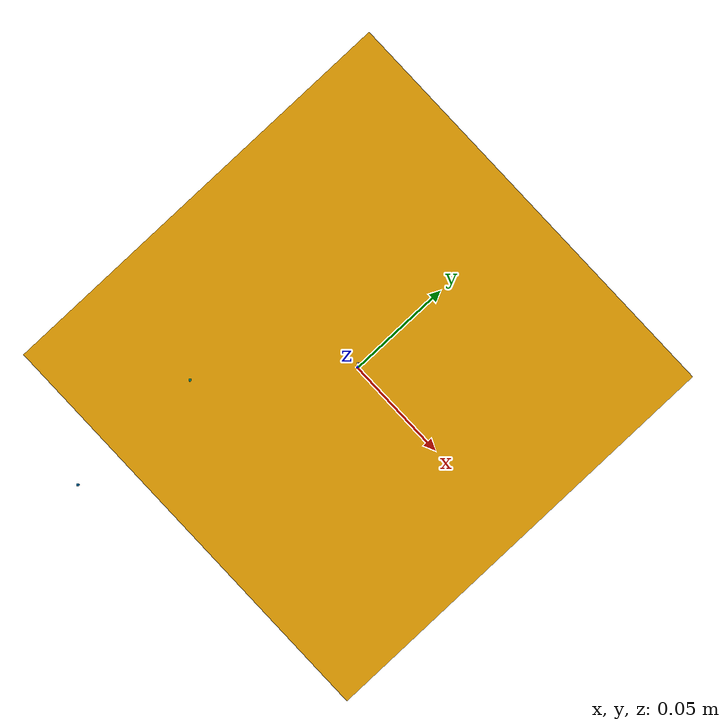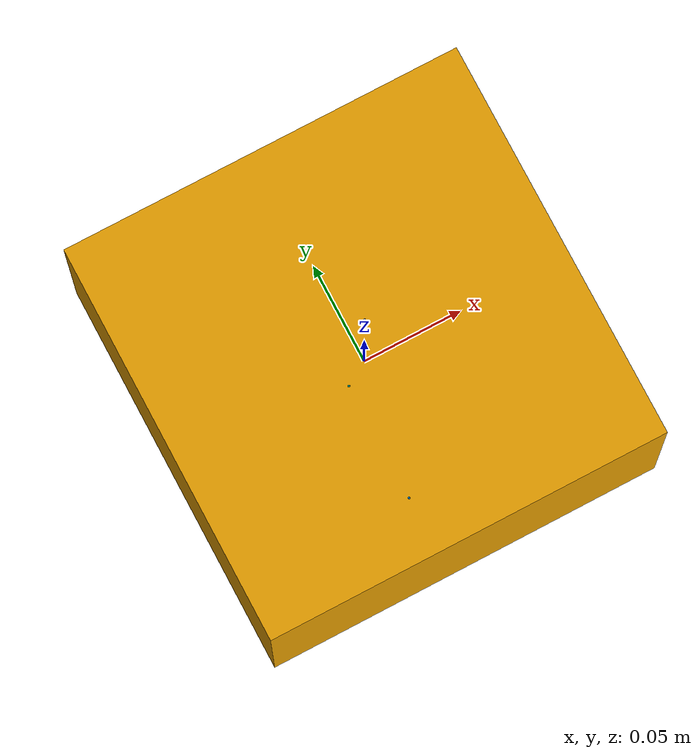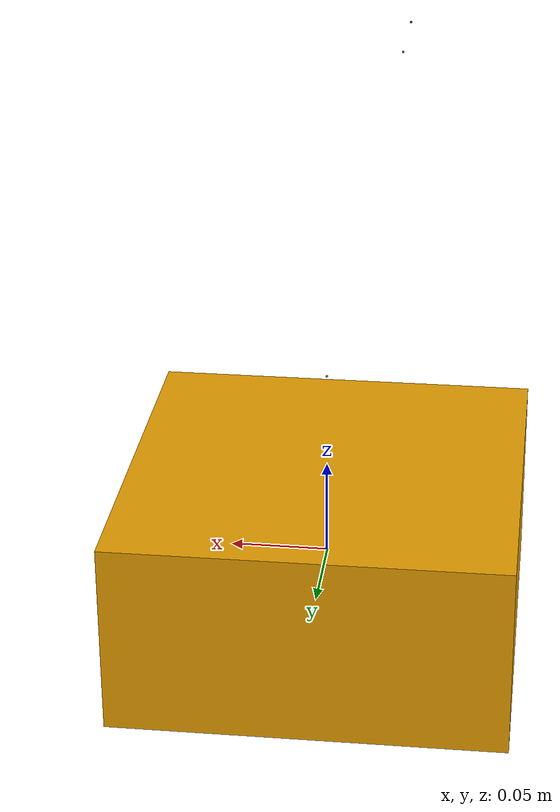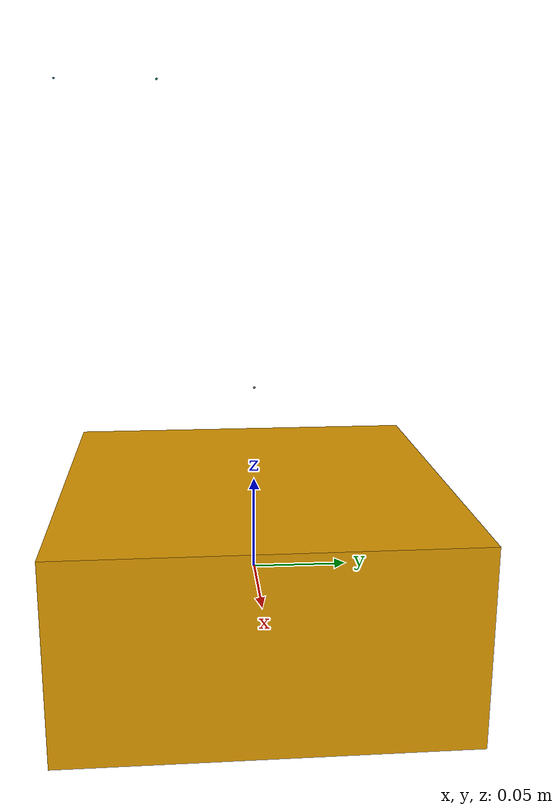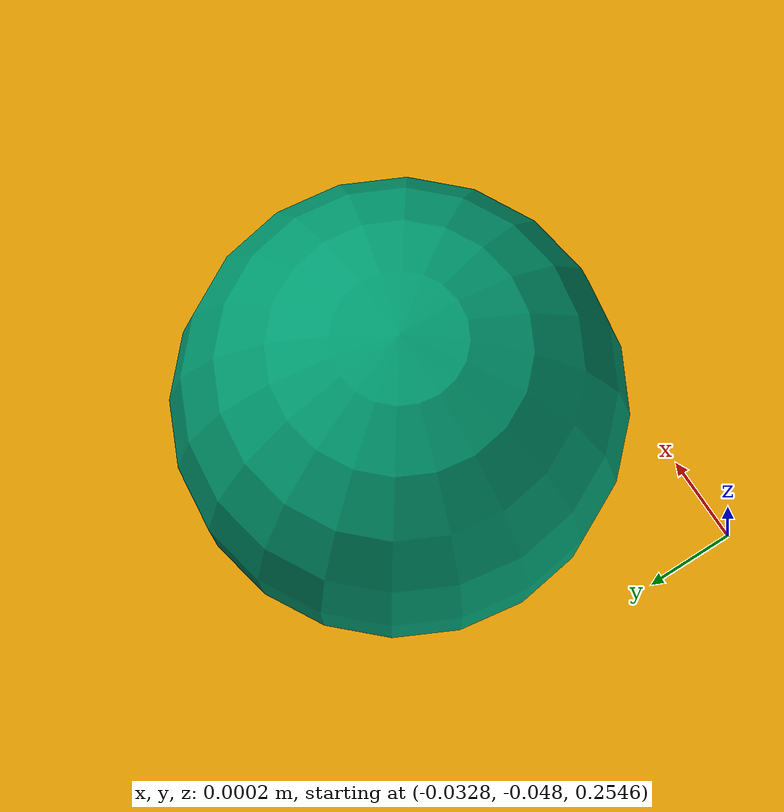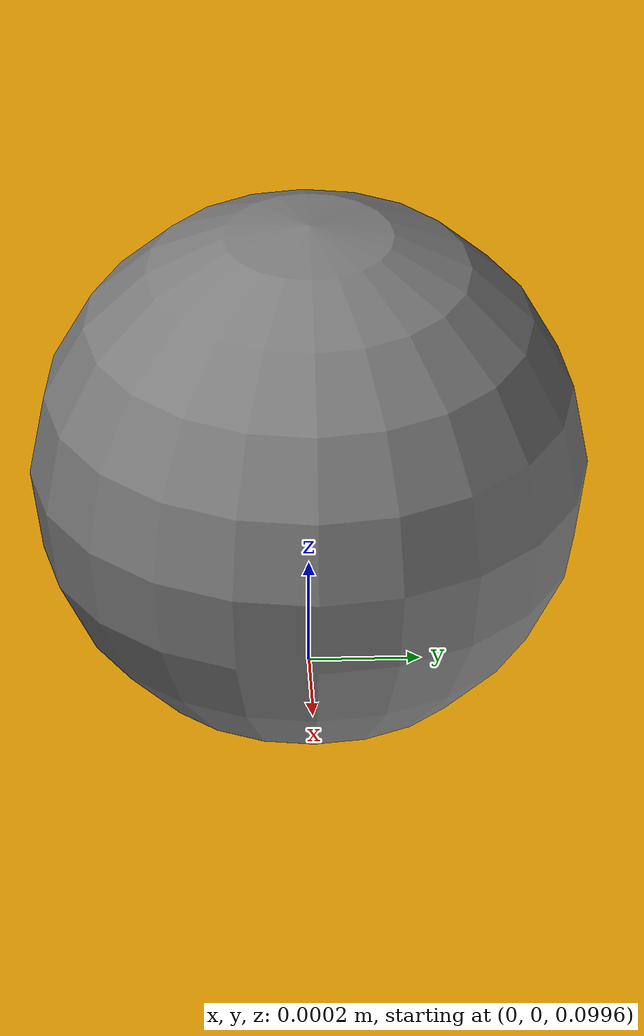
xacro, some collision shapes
<?xml version="1.0" ?>
<robot xmlns:xacro="http://ros.org/wiki/xacro"
       name="kinect" >
 <xacro:include filename="$(find ur_description)/urdf/common.xacro" />
<xacro:include filename="$(find ur_description)/urdf/common.gazebo.xacro" />

<link name="base_link">
    <visual>
        <geometry>
            <box size="0.2 0.2 0.1"/>
        </geometry>
    </visual>
    <collision>
        <oringin xyz="0 0 0" rpy="0 0 0"/>
        <geometry>
            <box size="0.2 0.2 0.1"/>
        </geometry>
    </collision>
</link>

<!-- end effector -->
<xacro:include filename="$(find ur_description)/urdf/sensors/kinect2.urdf.xacro" />
<xacro:kinect2_v0 name="head_mount" parent="base_link" >
  <origin xyz="0 0 0.1" rpy="0 0 0" />
</xacro:kinect2_v0>

</robot>

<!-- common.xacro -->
<robot>

  <property name="M_PI" value="3.1415926535897931" />
  <property name="VELOCITY_LIMIT_SCALE" value="0.6" />

  <!-- Gear Ratio Corrections: Divide transmission reductions by these factors (Nominally 1)-->
  <property name="cal_r_shoulder_pan_gearing"   value="1.0" />
  <property name="cal_r_shoulder_lift_gearing"  value="1.0" />
  <property name="cal_r_upper_arm_roll_gearing" value="1.0" />

  <!-- ********** Right Arm ********** -->
  <!-- Flag offsets: Add to the optical flag locations (Nominally 0) -->
  <property name="cal_r_shoulder_pan_flag"   value="0.0" />
  <property name="cal_r_shoulder_lift_flag"  value="0.0" />
  <property name="cal_r_upper_arm_roll_flag" value="0.0" />
  <property name="cal_r_elbow_flex_flag"     value="0.0" />
  <property name="cal_r_forearm_roll_flag"   value="0.0" />
  <property name="cal_r_wrist_flex_flag"     value="0.0" />
  <property name="cal_r_wrist_roll_flag"     value="0.0" />

  <!-- ********** Head ********** -->
  <!-- Head Location: Add to the transform from torso to head_pan_link (Nominally 0) -->
  <property name="cal_head_x" value="0.0" />
  <property name="cal_head_y" value="0.0" />
  <property name="cal_head_z" value="0.0" />
  <property name="cal_head_roll" value="0.0" />
  <property name="cal_head_pitch" value="0.0" />
  <property name="cal_head_yaw" value="0.0" />

  <!-- Flag Offsets -->
  <property name="cal_head_pan_flag"  value="0.0" />
  <property name="cal_head_tilt_flag" value="0.0" />

  <property name="cal_head_pan_flag" value="0.0"/>
  <property name="cal_head_tilt_flag" value="0.0"/>

  <!-- Casters -->
  <property name="cal_caster_fl" value="0.0" />
  <property name="cal_caster_fr" value="0.0" />
  <property name="cal_caster_bl" value="0.0" />
  <property name="cal_caster_br" value="0.0" />

  <!-- Stereo Camera Location (Nominally 0) -->
  <property name="cal_stereo_x" value="0.0" />
  <property name="cal_stereo_y" value="0.0" />
  <property name="cal_stereo_z" value="0.0" />
  <property name="cal_stereo_roll" value="0.0" />
  <property name="cal_stereo_pitch" value="0.0" />
  <property name="cal_stereo_yaw" value="0.0" />

  <!-- Kinect Camera Location (Nominally 0) -->
  <property name="cal_kinect_x" value="0.0" />
  <property name="cal_kinect_y" value="0.0" />
  <property name="cal_kinect_z" value="0.0" />
  <property name="cal_kinect_roll" value="0.0" />
  <property name="cal_kinect_pitch" value="0.0" />
  <property name="cal_kinect_yaw" value="0.0" />

  <!-- HighDef Camera Location (Nominally 0) -->
  <property name="cal_high_def_x" value="0.0" />
  <property name="cal_high_def_y" value="0.0" />
  <property name="cal_high_def_z" value="0.0" />
  <property name="cal_high_def_roll" value="0.0" />
  <property name="cal_high_def_pitch" value="0.0" />
  <property name="cal_high_def_yaw" value="0.0" />

  <!-- Throwing in left arm constants to appease the xacro parser -->
  <property name="cal_l_shoulder_pan_flag" value="0.000000" />
  <property name="cal_l_wrist_roll_flag" value="0.0" />
</robot>

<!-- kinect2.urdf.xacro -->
<robot xmlns:xacro="http://ros.org/wiki/xacro">
  <xacro:include filename="$(find ur_description)/urdf/sensors/kinect2.gazebo.xacro" />

  <property name="ir_depth_rgb_offset_y" value="0.01"/> <!-- FIXME: what is this offset? -->

  <!-- Kinect2 and mount assembly -->
  <xacro:macro name="kinect2_v0" params="name parent *origin">
    <joint name="${name}_kinect2_joint" type="fixed">
      <insert_block name="origin" />
      <parent link="${parent}"/>
      <child link="${name}_kinect2_link"/>
    </joint>
    <link name="${name}_kinect2_link">
      <inertial>
        <mass value="0.1"/>
        <origin xyz="0 0 0" rpy="0 0 0"/>
        <inertia ixx="0.01"  ixy="0.0"  ixz="0.0"
                 iyy="0.01"  iyz="0.0"
                 izz="0.01" />
      </inertial>
      <visual>
        <origin xyz="-0.102 -0.148 0" rpy="0 0 0"/>
        <geometry>
          <mesh filename="package://ur_description/meshes/sensors/kinect2_v0/kinect2_assembly.STL" scale="0.001 0.001 0.001" />
        </geometry>
        <material name="gray">
          <color rgba="0.5 0.5 0.5 1"/>
        </material>
      </visual>
      <collision>
        <origin xyz="0 0 0" rpy="0 0 0"/>
        <geometry>
          <sphere radius="0.0005"/>
        </geometry>
      </collision>
    </link>

    <!-- kinect2 ir sensor physical attachment -->
    <joint name="${name}_kinect2_ir_joint" type="fixed">
      <origin xyz="-0.032267 -0.0475 0.155" rpy="0 0 0"/>
      <parent link="${name}_kinect2_link"/>
      <child link="${name}_kinect2_ir_link"/>
    </joint>
    <link name="${name}_kinect2_ir_link">
      <inertial>
        <mass value="0.1" />
        <origin xyz="0 0 0" rpy="0 0 0"/>
        <inertia ixx="0.01"  ixy="0.0"  ixz="0.0"
                 iyy="0.01"  iyz="0.0"
                 izz="0.01" />
      </inertial>
      <visual>
        <origin xyz="0.0 0.0 0" rpy="0 0 0"/>
        <geometry>
          <sphere radius="0.0005"/>
        </geometry>
      </visual>
      <collision>
        <origin xyz="0.0 0.0 0" rpy="0 0 0"/>
        <geometry>
          <sphere radius="0.0005"/>
        </geometry>
      </collision>
    </link>
    <!-- kinect2 ir sensor frame -->
    <joint name="${name}_kinect2_ir_optical_frame_joint" type="fixed">
      <origin xyz="${cal_kinect_x}                  ${cal_kinect_y+ir_depth_rgb_offset_y} ${cal_kinect_z}"
              rpy="${-M_PI/2+cal_kinect_roll}       ${0.0+cal_kinect_pitch}               ${-M_PI/2+cal_kinect_yaw}" />
      <parent link="${name}_kinect2_ir_link"/>
      <child link="${name}_kinect2_ir_optical_frame"/>
    </joint>

    <link name="${name}_kinect2_ir_optical_frame"/>
    <!-- gazebo extensions -->
    <xacro:kinect2_ir_gazebo_v0 link_name="${name}_kinect2_ir_link" frame_name="${name}_kinect2_ir_optical_frame" camera_name="head_mount_kinect2" />

    <!-- kinect2 rgb sensor physical attachment -->
    <joint name="${name}_kinect2_rgb_joint" type="fixed">
      <origin xyz="0 -0.05175 0" rpy="0 0 0"/>
      <parent link="${name}_kinect2_ir_link"/>
      <child link="${name}_kinect2_rgb_link"/>
    </joint>

    <link name="${name}_kinect2_rgb_link" >
      <inertial>
        <mass value="0.1" />
        <origin xyz="0 0 0" rpy="0 0 0"/>
        <inertia ixx="0.01"  ixy="0.0"  ixz="0.0"
                 iyy="0.01"  iyz="0.0"
                 izz="0.01" />
      </inertial>
      <visual>
        <origin xyz="${cal_kinect_x}            ${cal_kinect_y}                 ${cal_kinect_z}"
                rpy="${-M_PI/2+cal_kinect_roll} ${0.0+cal_kinect_pitch}         ${-M_PI/2+cal_kinect_yaw}" />
        <geometry>
          <sphere radius="0.0005"/>
        </geometry>
      </visual>
      <collision>
        <origin xyz="0.0 0.0 0" rpy="0 0 0"/>
        <geometry>
          <sphere radius="0.0005"/>
        </geometry>
      </collision>
    </link>

    <!-- kinect2 rgb sensor frame -->
    <joint name="${name}_kinect2_rgb_optical_frame_joint" type="fixed">
      <origin xyz="${cal_kinect_x}            ${cal_kinect_y}                 ${cal_kinect_z}"
              rpy="${-M_PI/2+cal_kinect_roll} ${0.0+cal_kinect_pitch}         ${-M_PI/2+cal_kinect_yaw}" />
      <parent link="${name}_kinect2_rgb_link"/>
      <child link="${name}_kinect2_rgb_optical_frame"/>
    </joint>

    <link name="${name}_kinect2_rgb_optical_frame"/>
    <!-- gazebo extensions -->
    <xacro:kinect2_rgb_gazebo_v0 link_name="${name}_kinect2_rgb_link" frame_name="${name}_kinect2_rgb_optical_frame" camera_name="head_mount_kinect2" />

  </xacro:macro>

</robot>
